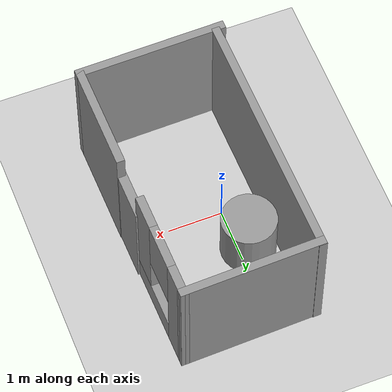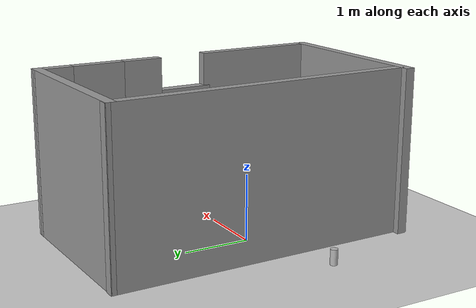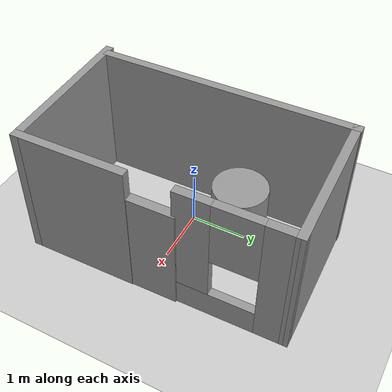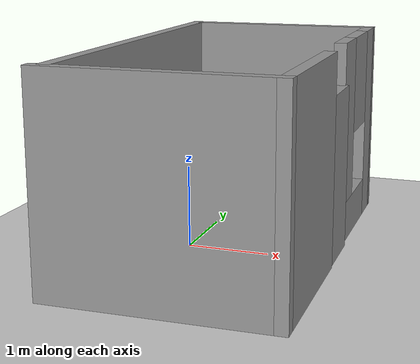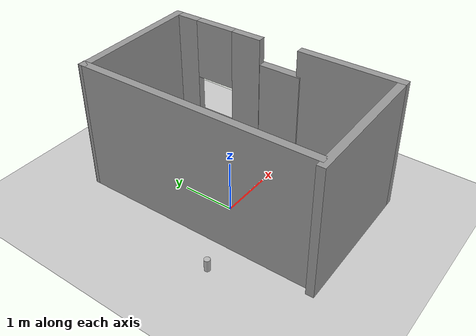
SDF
<sdf version="1.7">
 <world name="default">
  <light name="sun" type="directional">
   <pose>0 0 10 0 -0 0</pose>
   <diffuse>0.8 0.8 0.8 1</diffuse>
   <specular>0.2 0.2 0.2 1</specular>
   <attenuation>
    <range>1000</range>
    <constant>0.9</constant>
    <linear>0.01</linear>
    <quadratic>0.001</quadratic>
   </attenuation>
   <direction>-0.5 0.1 -0.9</direction>
   <spot><inner_angle>0</inner_angle><outer_angle>0</outer_angle><falloff>0</falloff></spot>
  </light>
  <model name="ground_plane">
   <static>1</static>
   <link name="link">
    <collision name="collision">
     <geometry><plane><normal>0 0 1</normal><size>100 100</size></plane></geometry>
     <surface><friction><ode><mu>100</mu><mu2>50</mu2></ode></friction></surface>
    </collision>
    <visual name="visual">
     <cast_shadows>0</cast_shadows>
     <geometry><plane><normal>0 0 1</normal><size>100 100</size></plane></geometry>
     <material>
      <script><uri>file://media/materials/scripts/gazebo.material</uri><name>Gazebo/Grey</name></script>
     </material>
    </visual>
   </link>
  </model>
  <gravity>0 0 -9.8</gravity>
  <magnetic_field>6e-06 2.3e-05 -4.2e-05</magnetic_field>
  <atmosphere type="adiabatic"/>
  <physics type="ode">
   <max_step_size>0.001</max_step_size>
   <real_time_factor>1</real_time_factor>
   <real_time_update_rate>1000</real_time_update_rate>
  </physics>
  <scene><ambient>0.4 0.4 0.4 1</ambient><background>0.7 0.7 0.7 1</background><shadows>1</shadows></scene>
  <audio><device>default</device></audio>
  <spherical_coordinates>
   <surface_model>EARTH_WGS84</surface_model>
   <latitude_deg>0</latitude_deg>
   <longitude_deg>0</longitude_deg>
   <elevation>0</elevation>
   <heading_deg>0</heading_deg>
  </spherical_coordinates>
  <model name="World_Model">
   <pose>1.01604 0.163596 0 0 0 -1.55336</pose>
   <link name="Door_0">
    <collision name="Door_0_Collision">
     <geometry><box><size>0.9 0.17 2</size></box></geometry>
     <pose>0 0 1 0 -0 0</pose>
    </collision>
    <visual name="Door_0_Visual">
     <pose>0 0 1 0 -0 0</pose>
     <geometry><box><size>0.9 0.17 2</size></box></geometry>
     <material>
      <script><uri>file://media/materials/scripts/gazebo.material</uri><name>Gazebo/Grey</name></script>
     </material>
    </visual>
    <pose>0.010305 0.7125 0 0 -0 0</pose>
   </link>
   <link name="Wall_0">
    <pose>-1.3747 0.6925 0 0 -0 0</pose>
    <visual name="Wall_0_Visual_0">
     <pose>-0.7075 0 1.25 0 -0 0</pose>
     <geometry><box><size>0.585 0.15 2.5</size></box></geometry>
     <material>
      <script><uri>file://media/materials/scripts/gazebo.material</uri><name>Gazebo/Grey</name></script>
      <ambient>1 1 1 1</ambient>
     </material>
     <meta><layer>0</layer></meta>
    </visual>
    <collision name="Wall_0_Collision_0">
     <geometry><box><size>0.585 0.15 2.5</size></box></geometry>
     <pose>-0.7075 0 1.25 0 -0 0</pose>
    </collision>
    <visual name="Wall_0_Visual_1">
     <pose>0.2925 0 0.25 0 -0 0</pose>
     <geometry><box><size>1.415 0.15 0.5</size></box></geometry>
     <material>
      <script><uri>file://media/materials/scripts/gazebo.material</uri><name>Gazebo/Grey</name></script>
      <ambient>1 1 1 1</ambient>
     </material>
     <meta><layer>0</layer></meta>
    </visual>
    <collision name="Wall_0_Collision_1">
     <geometry><box><size>1.415 0.15 0.5</size></box></geometry>
     <pose>0.2925 0 0.25 0 -0 0</pose>
    </collision>
    <visual name="Wall_0_Visual_2">
     <pose>0.6925 0 1.5 0 -0 0</pose>
     <geometry><box><size>0.615 0.15 2</size></box></geometry>
     <material>
      <script><uri>file://media/materials/scripts/gazebo.material</uri><name>Gazebo/Grey</name></script>
      <ambient>1 1 1 1</ambient>
     </material>
     <meta><layer>0</layer></meta>
    </visual>
    <collision name="Wall_0_Collision_2">
     <geometry><box><size>0.615 0.15 2</size></box></geometry>
     <pose>0.6925 0 1.5 0 -0 0</pose>
    </collision>
    <visual name="Wall_0_Visual_3">
     <pose>-0.015 0 1.9 0 -0 0</pose>
     <geometry><box><size>0.8 0.15 1.2</size></box></geometry>
     <material>
      <script><uri>file://media/materials/scripts/gazebo.material</uri><name>Gazebo/Grey</name></script>
      <ambient>1 1 1 1</ambient>
     </material>
     <meta><layer>0</layer></meta>
    </visual>
    <collision name="Wall_0_Collision_3">
     <geometry><box><size>0.8 0.15 1.2</size></box></geometry>
     <pose>-0.015 0 1.9 0 -0 0</pose>
    </collision>
   </link>
   <link name="Wall_2">
    <collision name="Wall_2_Collision">
     <geometry><box><size>2.60002 0.15 2.5</size></box></geometry>
     <pose>0 0 1.25 0 -0 0</pose>
    </collision>
    <visual name="Wall_2_Visual">
     <pose>0 0 1.25 0 -0 0</pose>
     <geometry><box><size>2.60002 0.15 2.5</size></box></geometry>
     <material>
      <script><uri>file://media/materials/scripts/gazebo.material</uri><name>Gazebo/Grey</name></script>
      <ambient>1 1 1 1</ambient>
     </material>
     <meta><layer>0</layer></meta>
    </visual>
    <pose>-2.2897 -0.5325 0 0 -0 1.57896</pose>
   </link>
   <link name="Wall_4">
    <collision name="Wall_4_Collision">
     <geometry><box><size>4.65001 0.15 2.5</size></box></geometry>
     <pose>0 0 1.25 0 -0 0</pose>
    </collision>
    <visual name="Wall_4_Visual">
     <pose>0 0 1.25 0 -0 0</pose>
     <geometry><box><size>4.65001 0.15 2.5</size></box></geometry>
     <material>
      <script><uri>file://media/materials/scripts/gazebo.material</uri><name>Gazebo/Grey</name></script>
      <ambient>1 1 1 1</ambient>
     </material>
     <meta><layer>0</layer></meta>
    </visual>
    <pose>-0.039695 -1.7625 0 0 -0 3.13937</pose>
   </link>
   <link name="Wall_8">
    <collision name="Wall_8_Collision">
     <geometry><box><size>2.75 0.15 2.5</size></box></geometry>
     <pose>0 0 1.25 0 -0 0</pose>
    </collision>
    <visual name="Wall_8_Visual">
     <pose>0 0 1.25 0 -0 0</pose>
     <geometry><box><size>2.75 0.15 2.5</size></box></geometry>
     <material>
      <script><uri>file://media/materials/scripts/gazebo.material</uri><name>Gazebo/Grey</name></script>
      <ambient>1 1 1 1</ambient>
     </material>
     <meta><layer>0</layer></meta>
    </visual>
    <pose>2.3003 -0.5675 0 0 -0 1.5708</pose>
   </link>
   <link name="Wall_9">
    <collision name="Wall_9_Collision">
     <geometry><box><size>2 0.15 2.5</size></box></geometry>
     <pose>0 0 1.25 0 -0 0</pose>
    </collision>
    <visual name="Wall_9_Visual">
     <pose>0 0 1.25 0 -0 0</pose>
     <geometry><box><size>2 0.15 2.5</size></box></geometry>
     <material>
      <script><uri>file://media/materials/scripts/gazebo.material</uri><name>Gazebo/Grey</name></script>
      <ambient>1 1 1 1</ambient>
     </material>
     <meta><layer>0</layer></meta>
    </visual>
    <pose>1.3753 0.7325 0 0 -0 3.14159</pose>
   </link>
   <static>1</static>
  </model>
  <model name="unit_cylinder">
   <pose>-0.181433 0.804464 0.499996 -1e-06 -5e-06 -0.000128</pose>
   <link name="link">
    <inertial>
     <mass>1</mass>
     <inertia><ixx>0.145833</ixx><ixy>0</ixy><ixz>0</ixz><iyy>0.145833</iyy><iyz>0</iyz><izz>0.125</izz></inertia>
    </inertial>
    <collision name="collision">
     <geometry><cylinder><radius>0.5</radius><length>1</length></cylinder></geometry>
    </collision>
    <visual name="visual">
     <geometry><cylinder><radius>0.5</radius><length>1</length></cylinder></geometry>
     <material>
      <script><name>Gazebo/Grey</name><uri>file://media/materials/scripts/gazebo.material</uri></script>
     </material>
    </visual>
   </link>
  </model>
  <model name="beer">
   <link name="link">
    <pose>0 0 0.115 0 -0 0</pose>
    <inertial>
     <mass>0.39</mass>
     <inertia><ixx>0.00058</ixx><ixy>0</ixy><ixz>0</ixz><iyy>0.00058</iyy><iyz>0</iyz><izz>0.00019</izz></inertia>
    </inertial>
    <collision name="collision">
     <geometry><cylinder><radius>0.055</radius><length>0.23</length></cylinder></geometry>
    </collision>
    <visual name="visual">
     <geometry><cylinder><radius>0.055</radius><length>0.23</length></cylinder></geometry>
     <material>
      <script>
       <uri>model://beer/materials/scripts</uri>
       <uri>model://beer/materials/textures</uri>
       <name>Beer/Diffuse</name>
      </script>
     </material>
    </visual>
   </link>
   <pose>-1.378 -0.568982 -7e-06 -1e-06 -0 -6e-06</pose>
  </model>
 </world>
</sdf>
